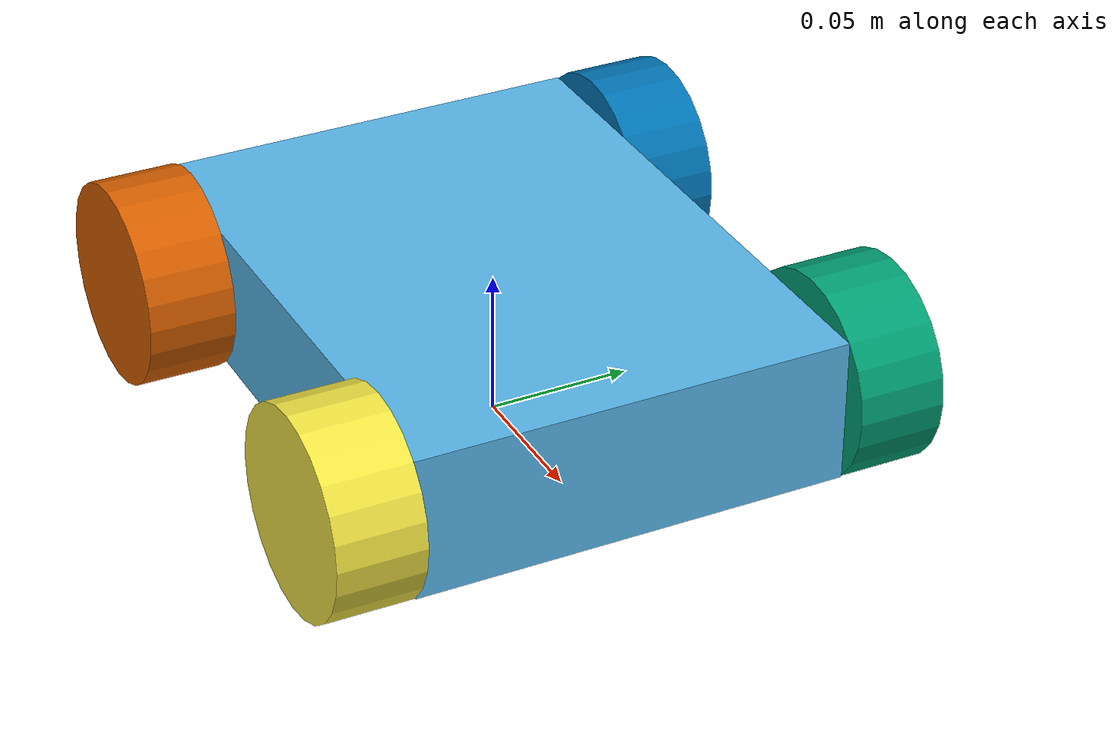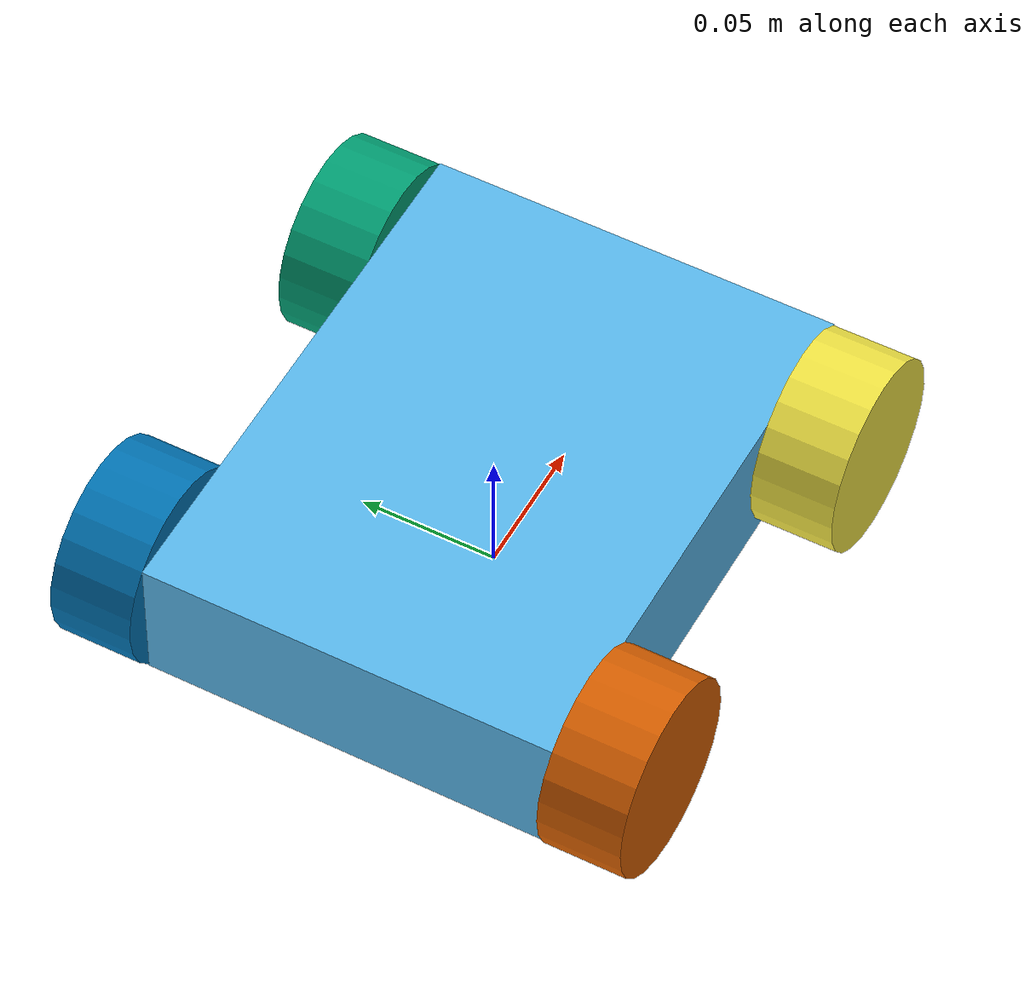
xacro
<?xml version="1.0"?>

<robot xmlns:xacro="http://www.ros.org/wiki/xacro" name="spectrobot">

    <xacro:include filename="$(find robot_description)/urdf/robot_gazebo.xacro"/>
    <xacro:include filename="$(find robot_description)/urdf/robot_ros2_control.xacro"/>

    <link name="base_footprint"/>

    <link name="base_link">
        <inertial>
                <origin xyz="0.0 0.0 0.0" rpy="0.0 0.0 0.0"/>
                <mass value="1.0"/>
                <inertia ixx="0.002083" ixy="0.0" ixz="0.0" iyy="0.003542" iyz="0.0" izz="0.005208"/>
        </inertial>
        <visual>
        <origin rpy="0 0 0" xyz="0 0 0"/>
            <geometry>
                <box size="0.2 0.15 0.05"/>
            </geometry>
        </visual>
        <collision>
            <origin rpy="0 0 0" xyz="0 0 0"/>
            <geometry>
                <box size="0.2 0.15 0.05"/>
            </geometry>
        </collision>
    </link>

    <joint name="base_joint" type="fixed">
        <parent link="base_footprint"/>
        <child link="base_link"/>
        <origin rpy="0 0 0" xyz="0 0 0.035"/>
    </joint>

    <link name="FL_wheel_link">
        <inertial>
            <origin xyz="0.0 0.0 0.0" rpy="0.0 0.0 0.0"/>
            <mass value="1.0"/>
            <inertia ixx="0.00038125" ixy="0.0" ixz="0.0" iyy="0.00038125" iyz="0.0" izz="0.0006125"/>
        </inertial>
        <visual>
            <origin xyz="0.0 0.0 0.0" rpy="0.0 0.0 0.0"/>
            <geometry>
                <cylinder radius="0.035" length="0.03"/>
            </geometry>
        </visual>
        <collision>
            <origin xyz="0.0 0.0 0.0" rpy="0.0 0.0 0.0"/>
            <geometry>
                <cylinder radius="0.035" length="0.03"/>
            </geometry>
        </collision>
    </link>

    <joint name="FL_wheel_joint" type="continuous">
        <origin xyz="0.075 0.09 0.0" rpy="-1.574 0.0 0.0"/>
        <parent link="base_link"/>
        <child link="FL_wheel_link"/>
        <axis xyz="0.0 0.0 1.0"/>
    </joint>

    <link name="FR_wheel_link">
        <inertial>
            <origin xyz="0.0 0.0 0.0" rpy="0.0 0.0 0.0"/>
            <mass value="1.0"/>
            <inertia ixx="0.00038125" ixy="0.0" ixz="0.0" iyy="0.00038125" iyz="0.0" izz="0.0006125"/>
        </inertial>
        <visual>
            <origin xyz="0.0 0.0 0.0" rpy="0.0 0.0 0.0"/>
            <geometry>
                <cylinder radius="0.035" length="0.03"/>
            </geometry>
        </visual>
        <collision>
            <origin xyz="0.0 0.0 0.0" rpy="0.0 0.0 0.0"/>
            <geometry>
                <cylinder radius="0.035" length="0.03"/>
            </geometry>
        </collision>
    </link>

    <joint name="FR_wheel_joint" type="continuous">
        <origin xyz="0.075 -0.09 0.0" rpy="-1.574 0.0 0.0"/>
        <parent link="base_link"/>
        <child link="FR_wheel_link"/>
        <axis xyz="0.0 0.0 1.0"/>
    </joint>

    <link name="RL_wheel_link">
        <inertial>
            <origin xyz="0.0 0.0 0.0" rpy="0.0 0.0 0.0"/>
            <mass value="1.0"/>
            <inertia ixx="0.00038125" ixy="0.0" ixz="0.0" iyy="0.00038125" iyz="0.0" izz="0.0006125"/>
        </inertial>
        <visual>
            <origin xyz="0.0 0.0 0.0" rpy="0.0 0.0 0.0"/>
            <geometry>
                <cylinder radius="0.035" length="0.03"/>
            </geometry>
        </visual>
        <collision>
            <origin xyz="0.0 0.0 0.0" rpy="0.0 0.0 0.0"/>
            <geometry>
                <cylinder radius="0.035" length="0.03"/>
            </geometry>
        </collision>
    </link>

    <joint name="RL_wheel_joint" type="continuous">
        <origin xyz="-0.075 0.09 0.0" rpy="-1.574 0.0 0.0"/>
        <parent link="base_link"/>
        <child link="RL_wheel_link"/>
        <axis xyz="0.0 0.0 1.0"/>
    </joint>

    <link name="RR_wheel_link">
        <inertial>
            <origin xyz="0.0 0.0 0.0" rpy="0.0 0.0 0.0"/>
            <mass value="1.0"/>
            <inertia ixx="0.00038125" ixy="0.0" ixz="0.0" iyy="0.00038125" iyz="0.0" izz="0.0006125"/>
        </inertial>
        <visual>
            <origin xyz="0.0 0.0 0.0" rpy="0.0 0.0 0.0"/>
            <geometry>
                <cylinder radius="0.035" length="0.03"/>
            </geometry>
        </visual>
        <collision>
            <origin xyz="0.0 0.0 0.0" rpy="0.0 0.0 0.0"/>
            <geometry>
                <cylinder radius="0.035" length="0.03"/>
            </geometry>
        </collision>
    </link>

    <joint name="RR_wheel_joint" type="continuous">
        <origin xyz="-0.075 -0.09 0.0" rpy="-1.574 0.0 0.0"/>
        <parent link="base_link"/>
        <child link="RR_wheel_link"/>
        <axis xyz="0.0 0.0 1.0"/>
    </joint>

</robot>
